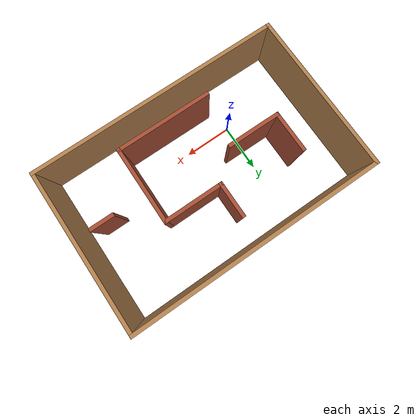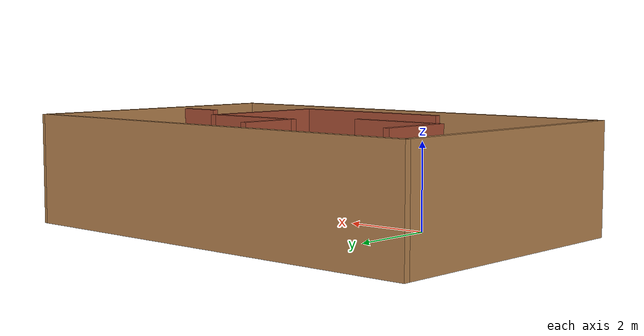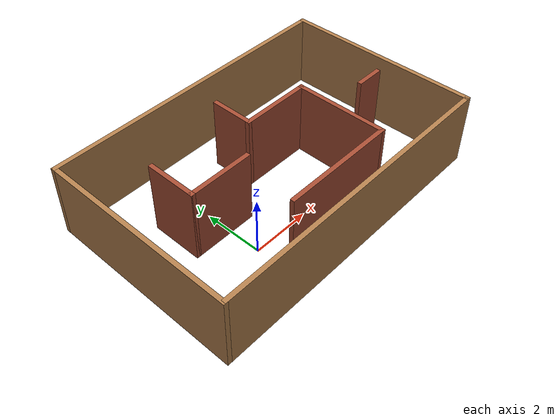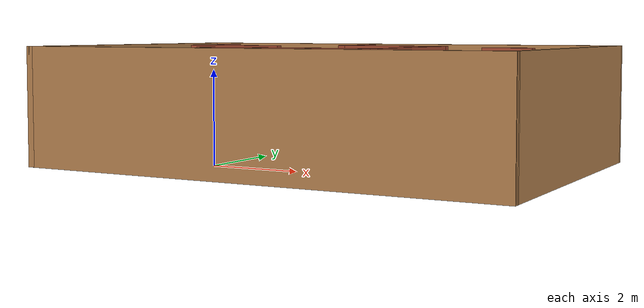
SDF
<?xml version='1.0'?>
<sdf version='1.7'>
  <model name='Maze_room'>
    <pose>2.0474 1.32445 0 0 -0 0</pose>
    <scale>20 20 10</scale>
    <link name='Wall_18'>
      <collision name='Wall_18_Collision'>
        <geometry>
          <box>
            <size>10.5 0.15 2.5</size>
          </box>
        </geometry>
        <pose>0 0 1.25 0 -0 0</pose>
      </collision>
      <visual name='Wall_18_Visual'>
        <pose>0 0 1.25 0 -0 0</pose>
        <geometry>
          <box>
            <size>10.5 0.15 2.5</size>
          </box>
        </geometry>
        <material>
          <script>
            <uri>file://media/materials/scripts/gazebo.material</uri>
            <name>Gazebo/Wood</name>
          </script>
          <ambient>1 1 1 1</ambient>
        </material>
        <meta>
          <layer>0</layer>
        </meta>
      </visual>
      <pose>0.029828 -3.30034 0 0 -0 0</pose>
    </link>
    <link name='Wall_19'>
      <collision name='Wall_19_Collision'>
        <geometry>
          <box>
            <size>6.73016 0.15 2.5</size>
          </box>
        </geometry>
        <pose>0 0 1.25 0 -0 0</pose>
      </collision>
      <visual name='Wall_19_Visual'>
        <pose>0 0 1.25 0 -0 0</pose>
        <geometry>
          <box>
            <size>6.73016 0.15 2.5</size>
          </box>
        </geometry>
        <material>
          <script>
            <uri>file://media/materials/scripts/gazebo.material</uri>
            <name>Gazebo/Wood</name>
          </script>
          <ambient>1 1 1 1</ambient>
        </material>
        <meta>
          <layer>0</layer>
        </meta>
      </visual>
      <pose>5.17466 0.009714 0 0 -0 1.57997</pose>
    </link>
    <link name='Wall_20'>
      <collision name='Wall_20_Collision'>
        <geometry>
          <box>
            <size>10.5 0.15 2.5</size>
          </box>
        </geometry>
        <pose>0 0 1.25 0 -0 0</pose>
      </collision>
      <visual name='Wall_20_Visual'>
        <pose>0 0 1.25 0 -0 0</pose>
        <geometry>
          <box>
            <size>10.5 0.15 2.5</size>
          </box>
        </geometry>
        <material>
          <script>
            <uri>file://media/materials/scripts/gazebo.material</uri>
            <name>Gazebo/Wood</name>
          </script>
          <ambient>1 1 1 1</ambient>
        </material>
        <meta>
          <layer>0</layer>
        </meta>
      </visual>
      <pose>-0.030513 3.29966 0 0 -0 3.14159</pose>
    </link>
    <link name='Wall_21'>
      <collision name='Wall_21_Collision'>
        <geometry>
          <box>
            <size>6.75 0.15 2.5</size>
          </box>
        </geometry>
        <pose>0 0 1.25 0 -0 0</pose>
      </collision>
      <visual name='Wall_21_Visual'>
        <pose>0 0 1.25 0 -0 0</pose>
        <geometry>
          <box>
            <size>6.75 0.15 2.5</size>
          </box>
        </geometry>
        <material>
          <script>
            <uri>file://media/materials/scripts/gazebo.material</uri>
            <name>Gazebo/Wood</name>
          </script>
          <ambient>1 1 1 1</ambient>
        </material>
        <meta>
          <layer>0</layer>
        </meta>
      </visual>
      <pose>-5.20551 -0.000342 0 0 -0 -1.5708</pose>
    </link>
    <link name='Wall_24'>
      <collision name='Wall_24_Collision'>
        <geometry>
          <box>
            <size>1.75 0.15 2.5</size>
          </box>
        </geometry>
        <pose>0 0 1.25 0 -0 0</pose>
      </collision>
      <visual name='Wall_24_Visual'>
        <pose>0 0 1.25 0 -0 0</pose>
        <geometry>
          <box>
            <size>1.75 0.15 2.5</size>
          </box>
        </geometry>
        <material>
          <script>
            <uri>file://media/materials/scripts/gazebo.material</uri>
            <name>Gazebo/Bricks</name>
          </script>
          <ambient>1 1 1 1</ambient>
        </material>
        <meta>
          <layer>0</layer>
        </meta>
      </visual>
      <pose>-3.33162 0.622549 0 0 -0 -1.5708</pose>
    </link>
    <link name='Wall_25'>
      <collision name='Wall_25_Collision'>
        <geometry>
          <box>
            <size>2.25 0.15 2.5</size>
          </box>
        </geometry>
        <pose>0 0 1.25 0 -0 0</pose>
      </collision>
      <visual name='Wall_25_Visual'>
        <pose>0 0 1.25 0 -0 0</pose>
        <geometry>
          <box>
            <size>2.25 0.15 2.5</size>
          </box>
        </geometry>
        <material>
          <script>
            <uri>file://media/materials/scripts/gazebo.material</uri>
            <name>Gazebo/Bricks</name>
          </script>
          <ambient>1 1 1 1</ambient>
        </material>
        <meta>
          <layer>0</layer>
        </meta>
      </visual>
      <pose>-2.28162 -0.177451 0 0 -0 0</pose>
    </link>
    <link name='Wall_27'>
      <collision name='Wall_27_Collision'>
        <geometry>
          <box>
            <size>4 0.15 2.5</size>
          </box>
        </geometry>
        <pose>0 0 1.25 0 -0 0</pose>
      </collision>
      <visual name='Wall_27_Visual'>
        <pose>0 0 1.25 0 -0 0</pose>
        <geometry>
          <box>
            <size>4 0.15 2.5</size>
          </box>
        </geometry>
        <material>
          <script>
            <uri>file://media/materials/scripts/gazebo.material</uri>
            <name>Gazebo/Bricks</name>
          </script>
          <ambient>1 1 1 1</ambient>
        </material>
        <meta>
          <layer>0</layer>
        </meta>
      </visual>
      <pose>0.282922 -2.29846 0 0 -0 0</pose>
    </link>
    <link name='Wall_28'>
      <collision name='Wall_28_Collision'>
        <geometry>
          <box>
            <size>3.25 0.15 2.5</size>
          </box>
        </geometry>
        <pose>0 0 1.25 0 -0 0</pose>
      </collision>
      <visual name='Wall_28_Visual'>
        <pose>0 0 1.25 0 -0 0</pose>
        <geometry>
          <box>
            <size>3.25 0.15 2.5</size>
          </box>
        </geometry>
        <material>
          <script>
            <uri>file://media/materials/scripts/gazebo.material</uri>
            <name>Gazebo/Bricks</name>
          </script>
          <ambient>1 1 1 1</ambient>
        </material>
        <meta>
          <layer>0</layer>
        </meta>
      </visual>
      <pose>2.20792 -0.748462 0 0 -0 1.5708</pose>
    </link>
    <link name='Wall_29'>
      <collision name='Wall_29_Collision'>
        <geometry>
          <box>
            <size>2.5 0.15 2.5</size>
          </box>
        </geometry>
        <pose>0 0 1.25 0 -0 0</pose>
      </collision>
      <visual name='Wall_29_Visual'>
        <pose>0 0 1.25 0 -0 0</pose>
        <geometry>
          <box>
            <size>2.5 0.15 2.5</size>
          </box>
        </geometry>
        <material>
          <script>
            <uri>file://media/materials/scripts/gazebo.material</uri>
            <name>Gazebo/Bricks</name>
          </script>
          <ambient>1 1 1 1</ambient>
        </material>
        <meta>
          <layer>0</layer>
        </meta>
      </visual>
      <pose>1.03292 0.801538 0 0 -0 3.14159</pose>
    </link>
    <link name='Wall_30'>
      <collision name='Wall_30_Collision'>
        <geometry>
          <box>
            <size>1.5 0.15 2.5</size>
          </box>
        </geometry>
        <pose>0 0 1.25 0 -0 0</pose>
      </collision>
      <visual name='Wall_30_Visual'>
        <pose>0 0 1.25 0 -0 0</pose>
        <geometry>
          <box>
            <size>1.5 0.15 2.5</size>
          </box>
        </geometry>
        <material>
          <script>
            <uri>file://media/materials/scripts/gazebo.material</uri>
            <name>Gazebo/Bricks</name>
          </script>
          <ambient>1 1 1 1</ambient>
        </material>
        <meta>
          <layer>0</layer>
        </meta>
      </visual>
      <pose>-0.142078 1.47654 0 0 -0 1.5708</pose>
    </link>
    <link name='Wall_32'>
      <collision name='Wall_32_Collision'>
        <geometry>
          <box>
            <size>1 0.15 2.5</size>
          </box>
        </geometry>
        <pose>0 0 1.25 0 -0 0</pose>
      </collision>
      <visual name='Wall_32_Visual'>
        <pose>0 0 1.25 0 -0 0</pose>
        <geometry>
          <box>
            <size>1 0.15 2.5</size>
          </box>
        </geometry>
        <material>
          <script>
            <uri>file://media/materials/scripts/gazebo.material</uri>
            <name>Gazebo/Bricks</name>
          </script>
          <ambient>1 1 1 1</ambient>
        </material>
        <meta>
          <layer>0</layer>
        </meta>
      </visual>
      <pose>4.05268 -0.427899 0 0 -0 0</pose>
    </link>
    <static>1</static>
  </model>
</sdf>
